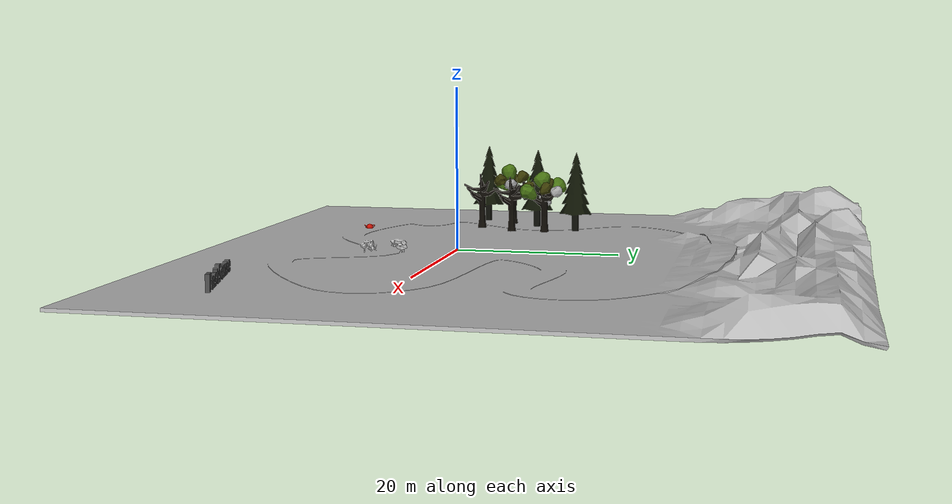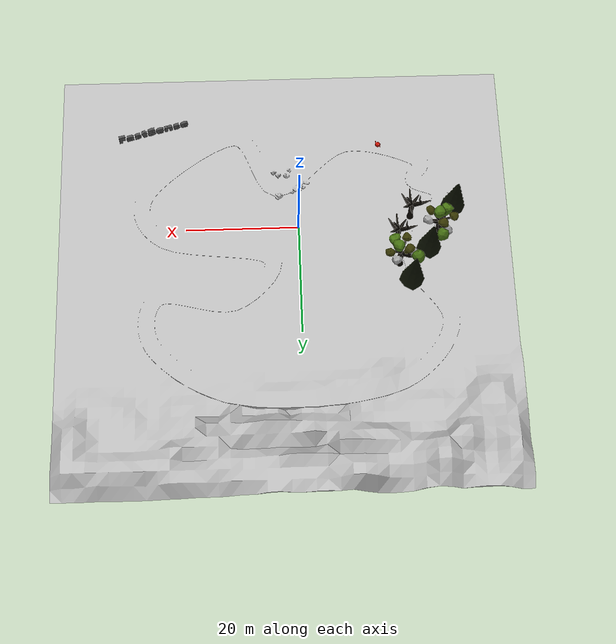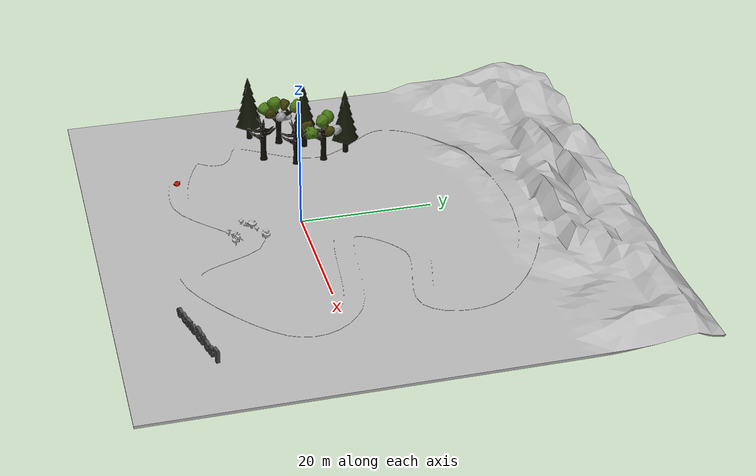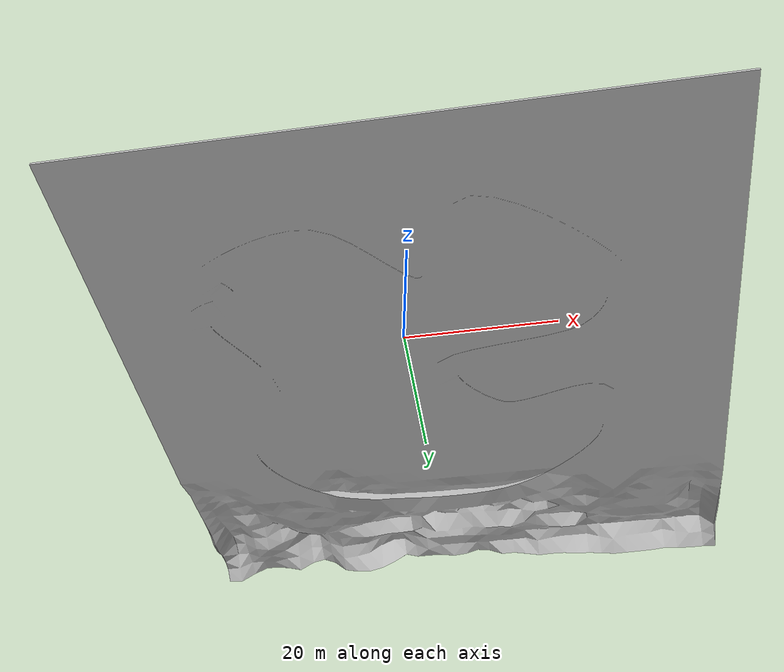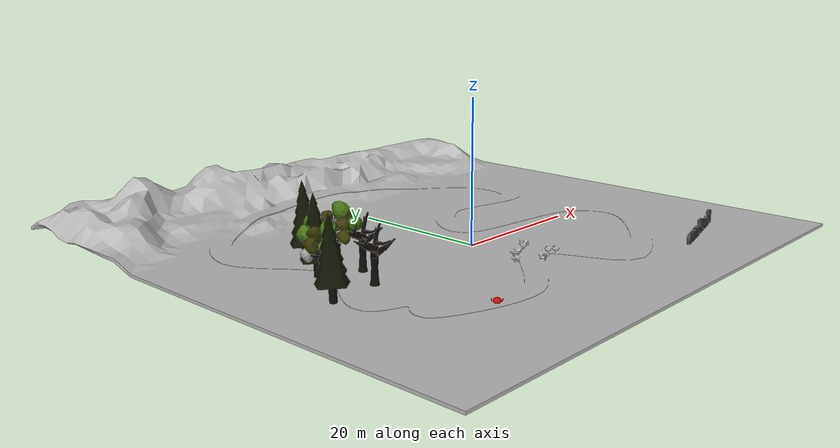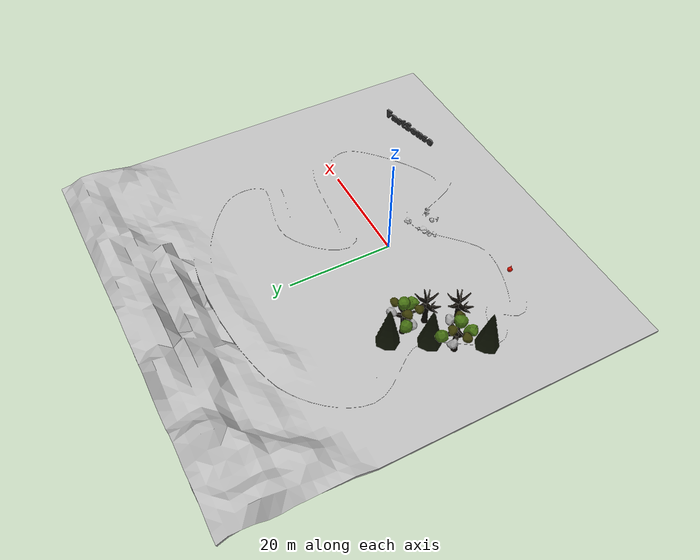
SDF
<?xml version='1.0'?>
<sdf version='1.6'>
  <model name='fastsense'>

    <link name="world">
      <visual name="visual">
        <geometry>
          <mesh><uri>model://small_world/smallworld.dae</uri></mesh>
        </geometry>
      </visual>
      <collision name="collision">
        <geometry>
          <mesh><uri>model://small_world/smallworld.dae</uri></mesh>
        </geometry>
      </collision>
    </link>

    <static>1</static>
    <allow_auto_disable>1</allow_auto_disable>
  </model>
</sdf>
